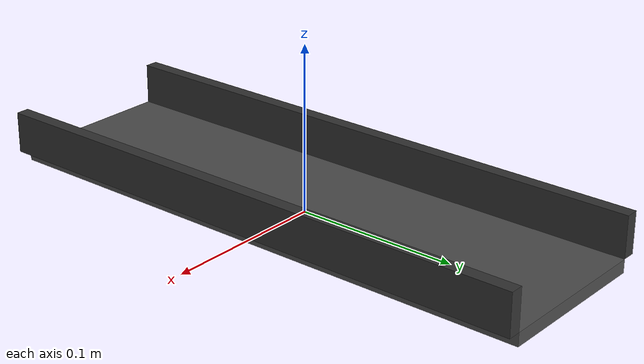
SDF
<?xml version="1.0" ?>
<sdf version="1.10">
  <model name="conveyor_side">
    <static>true</static>

    <link name="belt">
      <pose>0 0 0.004 0 0 0</pose>
      <collision name="col">
        <geometry><box><size>0.10 0.35 0.008</size></box></geometry>
      </collision>
      <visual name="vis">
        <geometry><box><size>0.10 0.35 0.008</size></box></geometry>
        <material>
          <ambient>0.20 0.20 0.20 1</ambient>
          <diffuse>0.30 0.30 0.30 1</diffuse>
          <specular>0.05 0.05 0.05 1</specular>
        </material>
      </visual>
    </link>

    <!-- Rail on -X side (outward from table) -->
    <link name="rail_left">
      <pose>-0.054 0 0.0205 0 0 0</pose>
      <collision name="col">
        <geometry><box><size>0.008 0.35 0.025</size></box></geometry>
      </collision>
      <visual name="vis">
        <geometry><box><size>0.008 0.35 0.025</size></box></geometry>
        <material>
          <ambient>0.12 0.12 0.12 1</ambient>
          <diffuse>0.20 0.20 0.20 1</diffuse>
        </material>
      </visual>
    </link>

    <!-- Rail on +X side (toward table interior) -->
    <link name="rail_right">
      <pose>0.054 0 0.0205 0 0 0</pose>
      <collision name="col">
        <geometry><box><size>0.008 0.35 0.025</size></box></geometry>
      </collision>
      <visual name="vis">
        <geometry><box><size>0.008 0.35 0.025</size></box></geometry>
        <material>
          <ambient>0.12 0.12 0.12 1</ambient>
          <diffuse>0.20 0.20 0.20 1</diffuse>
        </material>
      </visual>
    </link>

  </model>
</sdf>
